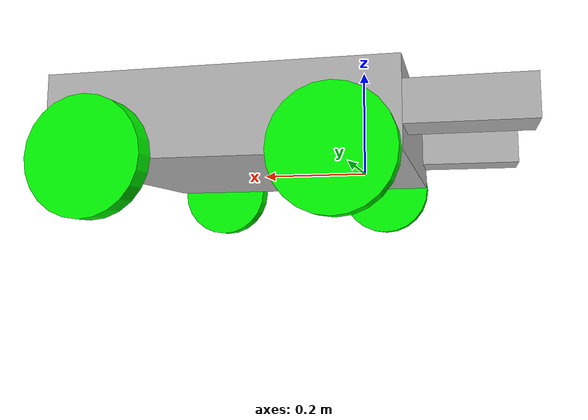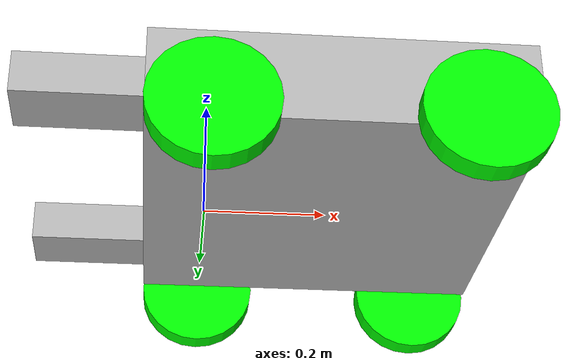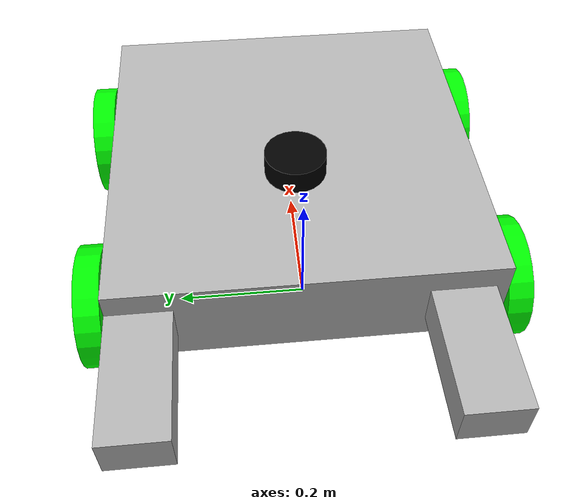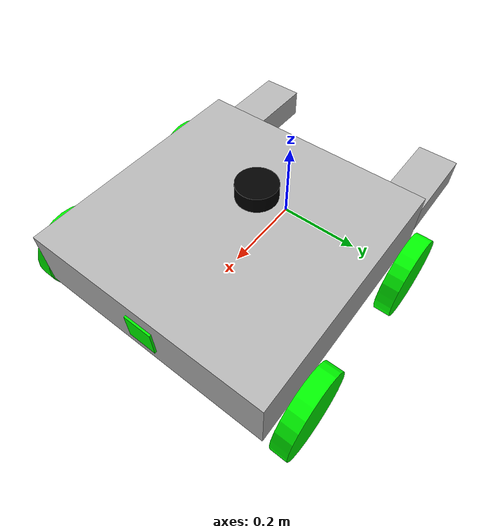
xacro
<?xml version="1.0"?>
<robot xmlns:xacro="http://www.ros.org/wiki/xacro"  name="robot">

    <!--xacro:arg name="use_ros2_control" default="true" -->
    <!-- xacro:arg name="sim_mode" default="false" -->

    <xacro:include filename="robot_core.xacro" />
    <xacro:include filename="gazebo_control.xacro"/>

    <xacro:include filename="lidar.xacro"/>
    <xacro:include filename="line.xacro"/>
   <xacro:include filename="camera.xacro"/>
</robot>

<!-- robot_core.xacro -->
<robot xmlns:xacro="http://www.ros.org/wiki/xacro">

    <xacro:include filename="inertial_macros.xacro"/>

    <material name="green">
        <color rgba="0 1 0 1" />
    </material>
    <material name="gray">
        <color rgba="0.7 0.7 0.7 1" />
    </material>
    <material name="black">
        <color rgba="0 0 0 1" />
    </material>
    <material name="blue">
        <color rgba="0.2 0.2 1 1" />
    </material>
    <link name="base_link">

    </link>
    <!-- vex_chassis link -->
    <joint name="vex_chassis_joint" type="fixed">
        <parent link="base_link"/>
        <child link="vex_chassis"/>
        <origin xyz="-0.1 0 0"/>
    </joint>
    <link name="vex_chassis">
        <visual>
            <origin xyz=".3 0 0.075"/>
            <geometry>
                <box size="0.6 0.6 0.15"/>

            </geometry>
            <material name="gray"/>
        </visual>
        <collision>
            <origin xyz=".3 0 0.075"/>
            <geometry>
                <box size="0.6 0.6 0.15"/>
            </geometry>
        </collision>
        <xacro:inertial_box mass="0.5" x="0.6" y="0.6" z="0.15">
            <origin xyz=".3 0 0.075" rpy="0 0 0"/>
        </xacro:inertial_box>
    </link>
    <gazebo reference="vex_chassis">
        <material>Gazebo/Gray</material>
    </gazebo>

<!-- left wheel link -->
<joint name="left_wheel_joint" type='continuous'>
            <parent link="base_link"/>
            <child link="left_wheel"/>
            <origin xyz=".4 0.335 0" rpy="-${pi/2} 0 0"/>
            <axis xyz="0 0 1"/>
        </joint>
        <link name="left_wheel">
            <visual>
                <geometry>
                    <cylinder radius="0.1" length="0.04"/>
                </geometry>
                <material name="green"/>
            </visual>

            <collision>
                <geometry>
                    <cylinder radius="0.1" length="0.04"/>
                </geometry>
            </collision>
            <xacro:inertial_cylinder mass="0.1" radius="0.1" length="0.04">
                <origin xyz="0 0 0" rpy="0 0 0"/>
            </xacro:inertial_cylinder>
        </link>

        <gazebo reference="left_wheel">
            <material>Gazebo/Green</material>
        </gazebo>

        <!-- left wheel2 link -->
        <joint name="left_wheel2_joint" type='fixed'>
            <parent link="base_link"/>
            <child link="left_wheel2"/>
            <origin xyz="0 0.335 0" rpy="-${pi/2} 0 0"/>
            <axis xyz="0 0 1"/>
        </joint>

        <link name="left_wheel2">
            <visual>
                <geometry>
                    <cylinder radius="0.1" length="0.04"/>
                </geometry>
                <material name="green"/>
            </visual>
            <collision>
                <geometry>
                    <cylinder radius="0.1" length="0.04"/>
                </geometry>
            </collision>
            <xacro:inertial_cylinder mass="0.1" radius="0.1" length="0.04">
                <origin xyz="0 0 0" rpy="0 0 0"/>
            </xacro:inertial_cylinder>
        </link>

        <gazebo reference="left_wheel2">
            <material>Gazebo/Green</material>
            <mu1 value="0.001"/>
            <mu2 value="0.001"/>
        </gazebo>

        <!-- right wheel link -->
        <joint name="right_wheel_joint" type='continuous'>
            <parent link="base_link"/>
            <child link="right_wheel"/>
            <origin xyz="0.4 -0.335 0" rpy="${pi/2} 0 0"/>
            <axis xyz="0 0 -1"/>
        </joint>
        <link name="right_wheel">
            <visual>
                <geometry>
                    <cylinder radius="0.1" length="0.04"/>
                </geometry>
                <material name="green"/>
            </visual>
            <collision>
                <geometry>
                    <cylinder radius="0.1" length="0.04"/>
                </geometry>
            </collision>
            <xacro:inertial_cylinder mass="0.15" radius="0.1" length="0.04">
                <origin xyz="0 0 0" rpy="0 0 0"/>
            </xacro:inertial_cylinder>
        </link>

        <gazebo reference="right_wheel">
            <material>Gazebo/Green</material>
        </gazebo>

        <!-- right wheel2 link -->
        <joint name="right_wheel2_joint" type='fixed'>
            <parent link="base_link"/>
            <child link="right_wheel2"/>
            <origin xyz="0 -0.335 0" rpy="${pi/2} 0 0"/>
            <axis xyz="0 0 -1"/>
        </joint>

        <link name="right_wheel2">
            <visual>
                <geometry>
                    <cylinder radius="0.1" length="0.04"/>
                </geometry>
                <material name="green"/>
            </visual>
            <collision>
                <geometry>
                    <cylinder radius="0.1" length="0.04"/>
                </geometry>
            </collision>
            <xacro:inertial_cylinder mass="0.1" radius="0.1" length="0.04">
                <origin xyz="0 0 0" rpy="0 0 0"/>
            </xacro:inertial_cylinder>
        </link>

        <gazebo reference="right_wheel2">
            <material>Gazebo/Green</material>
            <mu1 value="0.001"/>
            <mu2 value="0.001"/>
        </gazebo>

    </robot>

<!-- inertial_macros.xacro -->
<robot xmlns:xacro="http://www.ros.org/wiki/xacro" >

    <!-- Specify some standard inertial calculations https://en.wikipedia.org/wiki/List_of_moments_of_inertia -->
    <!-- These make use of xacro's mathematical functionality -->

    <xacro:macro name="inertial_sphere" params="mass radius *origin">
        <inertial>
            <xacro:insert_block name="origin"/>
            <mass value="${mass}" />
            <inertia ixx="${(2/5) * mass * (radius*radius)}" ixy="0.0" ixz="0.0"
                    iyy="${(2/5) * mass * (radius*radius)}" iyz="0.0"
                    izz="${(2/5) * mass * (radius*radius)}" />
        </inertial>
    </xacro:macro>

    <xacro:macro name="inertial_box" params="mass x y z *origin">
        <inertial>
            <xacro:insert_block name="origin"/>
            <mass value="${mass}" />
            <inertia ixx="${(1/12) * mass * (y*y+z*z)}" ixy="0.0" ixz="0.0"
                    iyy="${(1/12) * mass * (x*x+z*z)}" iyz="0.0"
                    izz="${(1/12) * mass * (x*x+y*y)}" />
        </inertial>
    </xacro:macro>

    <xacro:macro name="inertial_cylinder" params="mass length radius *origin">
        <inertial>
            <xacro:insert_block name="origin"/>
            <mass value="${mass}" />
            <inertia ixx="${(1/12) * mass * (3*radius*radius + length*length)}" ixy="0.0" ixz="0.0"
                    iyy="${(1/12) * mass * (3*radius*radius + length*length)}" iyz="0.0"
                    izz="${(1/2) * mass * (radius*radius)}" />
        </inertial>
    </xacro:macro>

</robot>

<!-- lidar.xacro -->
<robot xmlns:xacro="http://www.ros.org/wiki/xacro">

    <joint name="laser_joint" type="fixed">
        <parent link="vex_chassis"/>
        <child link="laser_frame"/>
        <origin xyz="0.225 0 0.175" rpy="0 0 0"/>
    </joint>

    <link name="laser_frame">
        <visual>
            <geometry>
                <cylinder radius="0.05" length="0.04"/>
            </geometry>
            <material name="black"/>
        </visual>
        <collision>
            <geometry>
                <cylinder radius="0.05" length="0.04"/>
            </geometry>
        </collision>
        <xacro:inertial_cylinder mass="0.1" radius="0.05" length="0.04">
            <origin xyz="0 0 0" rpy="0 0 0"/>
        </xacro:inertial_cylinder>
    </link>

    <gazebo reference="laser_frame">
        <sensor name="laser" type="ray">
            <pose>0 0 0 0 0 0</pose>
            <visualize>true</visualize>
            <update_rate>10</update_rate>
            <ray>
                <scan>
                    <horizontal>
                        <samples>360</samples>
                        <resolution>1</resolution>
                        <min_angle>-3.14</min_angle>
                        <max_angle>3.14</max_angle>
                    </horizontal>
                </scan>
                <range>
                    <min>0.5</min>
                    <max>12</max>
                    <resolution>0.01</resolution>
                </range>
            </ray>
            <plugin name="laser_controller" filename="libgazebo_ros_ray_sensor.so">
                <ros>
                    <argument>~/out:=scan</argument>

                </ros>
                <output_type>sensor_msgs/LaserScan</output_type>
                <frame_name>laser_frame</frame_name>
            </plugin>
        </sensor>
    </gazebo>

</robot>

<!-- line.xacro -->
<robot xmlns:xacro="http://www.ros.org/wiki/xacro">

    <joint name="line_joint" type="fixed">
        <parent link="vex_chassis"/>
        <child link="line_link"/>
        <origin xyz="-0.1 0.25 0.075"/>
    </joint>

    <link name="line_link">
        <visual>
            <geometry>
                <box size="0.2 0.1 0.07"/>
            </geometry>
            <material name="gray"/>
        </visual>

    </link>

    <joint name="line_joint2" type="fixed">
        <parent link="vex_chassis"/>
        <child link="line_link2"/>
        <origin xyz="-0.1 -0.23 0.075"/>
    </joint>

    <link name="line_link2">
        <visual>
            <geometry>
                <box size="0.2 0.1 0.07"/>
            </geometry>
            <material name="gray"/>
        </visual>

    </link>

    <gazebo reference="line_link2">
        <material>Gazebo/Gray</material>
    </gazebo>

    <gazebo reference="line_link">
        <material>Gazebo/Gray</material>
    </gazebo>

</robot>

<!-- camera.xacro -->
<robot xmlns:xacro="http://www.ros.org/wiki/xacro">

    <joint name="camera_joint" type="fixed">
        <parent link="vex_chassis"/>
        <child link="camera_link"/>
        <origin xyz="0.6 0 0.075" rpy="0 0 0"/>
    </joint>

    <link name="camera_link">
        <visual>
            <geometry>
                <box size="0.010 0.07 0.07"/>
            </geometry>
            <material name="green"/>
        </visual>

    </link>

    <joint name="camera_optical_joint" type="fixed">
        <parent link="camera_link"/>
        <child link="camera_link_optical"/>
        <origin xyz="0 0 0" rpy="${-pi/2} 0 ${-pi/2}"/>
    </joint>

    <link name="camera_link_optical"></link>

    <gazebo reference="camera_link">
        <material>Gazebo/Green</material>
    </gazebo>

    <gazebo reference="camera_link">
        <sensor name="camera" type="camera">
            <pose>0 0 0 0 0 0</pose>
            <visualize>true</visualize>
            <update>10</update>
            <camera>
               <horizontal_fov>1.08</horizontal_fov>
               <image>
                <format>R8G8B8</format>
                <width>640</width>
                <height>480</height>
               </image>
               <clip>
                <near>0.05</near>
                <far>8.0</far>
               </clip>
            </camera>
            <plugin name="camera_controller" filename="libgazebo_ros_camera.so">
                <frame_name>camera_link_optical</frame_name>
            </plugin>
        </sensor>
    </gazebo>

</robot>
